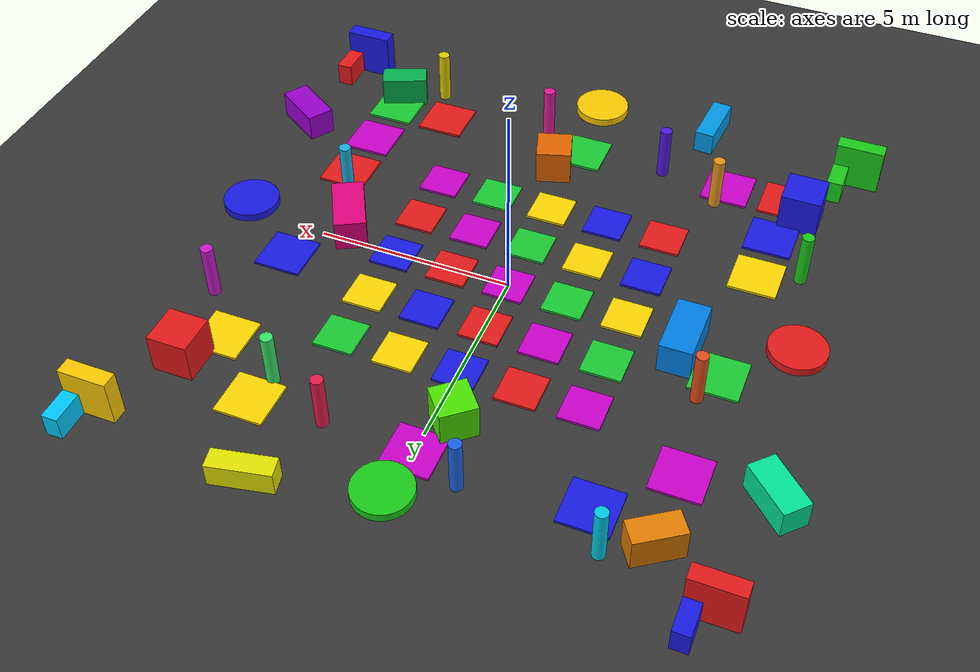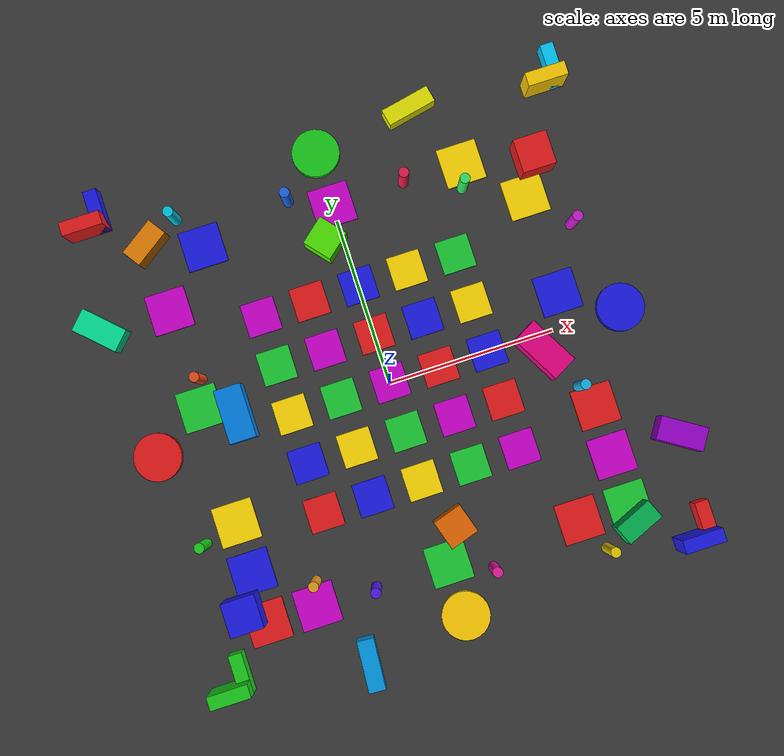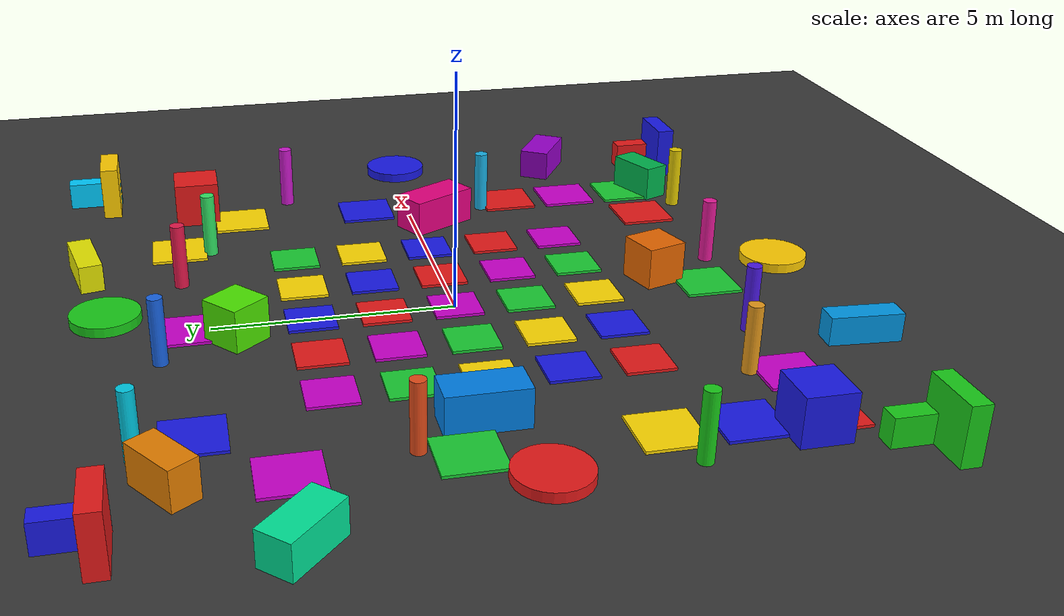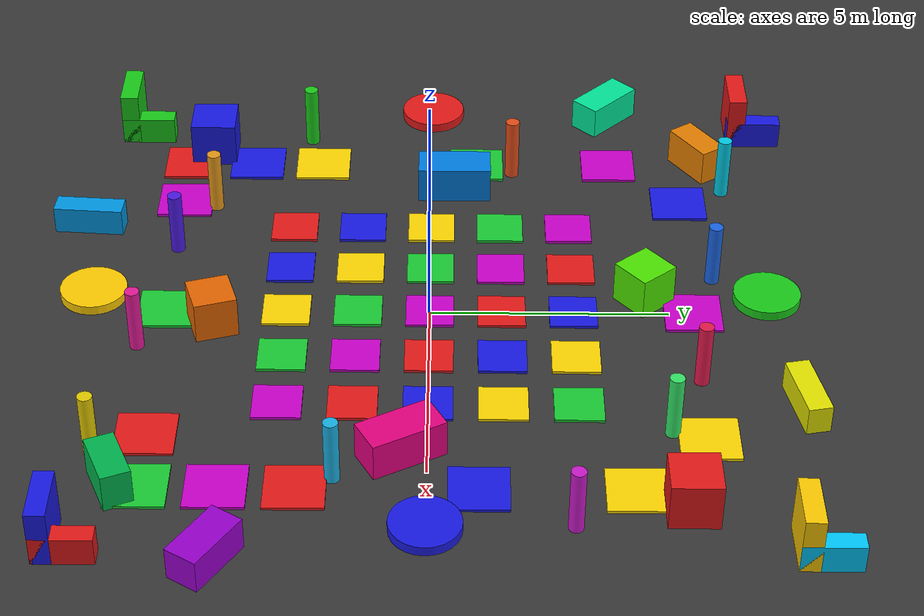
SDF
<?xml version="1.0" ?>
<sdf version="1.9">
  <world name="slam_world">

    <!-- Temel sistem plugin'leri -->
    <plugin filename="gz-sim-physics-system"
            name="gz::sim::systems::Physics"/>
    <plugin filename="gz-sim-user-commands-system"
            name="gz::sim::systems::UserCommands"/>
    <plugin filename="gz-sim-scene-broadcaster-system"
            name="gz::sim::systems::SceneBroadcaster"/>
    <plugin filename="gz-sim-sensors-system"
            name="gz::sim::systems::Sensors">
      <render_engine>ogre2</render_engine>
    </plugin>

    <gravity>0 0 -9.8</gravity>

    <scene>
      <ambient>1.0 1.0 1.0 1</ambient>
      <background>0.4 0.6 0.8 1</background>
      <shadows>false</shadows>
    </scene>

    <!-- Ana güneş ışığı -->
    <light name="sun" type="directional">
      <pose>0 0 30 0 0 0</pose>
      <diffuse>1.0 1.0 1.0 1</diffuse>
      <specular>0.4 0.4 0.4 1</specular>
      <direction>-0.2 0.1 -1</direction>
      <cast_shadows>false</cast_shadows>
    </light>

    <!-- Dolgu ışığı: gölge bırakmaz, renkleri eşit aydınlatır -->
    <light name="fill_light" type="directional">
      <pose>0 0 20 0 0 0</pose>
      <diffuse>0.6 0.6 0.6 1</diffuse>
      <specular>0.1 0.1 0.1 1</specular>
      <direction>0.3 -0.2 -1</direction>
      <cast_shadows>false</cast_shadows>
    </light>

    <!-- ===== ZEMIN: koyu gri — açık renkli tile'lar daha belirgin görünür ===== -->
    <model name="ground_plane">
      <static>true</static>
      <pose>0 0 0 0 0 0</pose>
      <link name="ground_link">
        <collision name="collision">
          <geometry>
            <plane><normal>0 0 1</normal><size>80 80</size></plane>
          </geometry>
        </collision>
        <visual name="visual">
          <geometry>
            <plane><normal>0 0 1</normal><size>80 80</size></plane>
          </geometry>
          <material>
            <ambient>0.18 0.18 0.18 1</ambient>
            <diffuse>0.22 0.22 0.22 1</diffuse>
            <specular>0.02 0.02 0.02 1</specular>
          </material>
        </visual>
      </link>
    </model>

    <model name="tile_0">
      <static>true</static>
      <pose>-3.0 -3.0 0.03 0 0 0.0</pose>
      <link name="link">
        <collision name="col"><geometry><box><size>1.0 1.0 0.06</size></box></geometry></collision>
        <visual name="vis">
          <geometry><box><size>1.0 1.0 0.06</size></box></geometry>
          <material><ambient>0.9 0.1 0.1 1</ambient><diffuse>0.9 0.1 0.1 1</diffuse></material>
        </visual>
      </link>
    </model>

    <model name="tile_1">
      <static>true</static>
      <pose>-3.0 -1.5 0.03 0 0 0.0</pose>
      <link name="link">
        <collision name="col"><geometry><box><size>1.0 1.0 0.06</size></box></geometry></collision>
        <visual name="vis">
          <geometry><box><size>1.0 1.0 0.06</size></box></geometry>
          <material><ambient>0.1 0.1 0.9 1</ambient><diffuse>0.1 0.1 0.9 1</diffuse></material>
        </visual>
      </link>
    </model>

    <model name="tile_2">
      <static>true</static>
      <pose>-3.0 0.0 0.03 0 0 0.0</pose>
      <link name="link">
        <collision name="col"><geometry><box><size>1.0 1.0 0.06</size></box></geometry></collision>
        <visual name="vis">
          <geometry><box><size>1.0 1.0 0.06</size></box></geometry>
          <material><ambient>1.0 0.85 0.0 1</ambient><diffuse>1.0 0.85 0.0 1</diffuse></material>
        </visual>
      </link>
    </model>

    <model name="tile_3">
      <static>true</static>
      <pose>-3.0 1.5 0.03 0 0 0.0</pose>
      <link name="link">
        <collision name="col"><geometry><box><size>1.0 1.0 0.06</size></box></geometry></collision>
        <visual name="vis">
          <geometry><box><size>1.0 1.0 0.06</size></box></geometry>
          <material><ambient>0.1 0.8 0.2 1</ambient><diffuse>0.1 0.8 0.2 1</diffuse></material>
        </visual>
      </link>
    </model>

    <model name="tile_4">
      <static>true</static>
      <pose>-3.0 3.0 0.03 0 0 0.0</pose>
      <link name="link">
        <collision name="col"><geometry><box><size>1.0 1.0 0.06</size></box></geometry></collision>
        <visual name="vis">
          <geometry><box><size>1.0 1.0 0.06</size></box></geometry>
          <material><ambient>0.8 0.0 0.8 1</ambient><diffuse>0.8 0.0 0.8 1</diffuse></material>
        </visual>
      </link>
    </model>

    <model name="tile_5">
      <static>true</static>
      <pose>-1.5 -3.0 0.03 0 0 0.0</pose>
      <link name="link">
        <collision name="col"><geometry><box><size>1.0 1.0 0.06</size></box></geometry></collision>
        <visual name="vis">
          <geometry><box><size>1.0 1.0 0.06</size></box></geometry>
          <material><ambient>0.1 0.1 0.9 1</ambient><diffuse>0.1 0.1 0.9 1</diffuse></material>
        </visual>
      </link>
    </model>

    <model name="tile_6">
      <static>true</static>
      <pose>-1.5 -1.5 0.03 0 0 0.0</pose>
      <link name="link">
        <collision name="col"><geometry><box><size>1.0 1.0 0.06</size></box></geometry></collision>
        <visual name="vis">
          <geometry><box><size>1.0 1.0 0.06</size></box></geometry>
          <material><ambient>1.0 0.85 0.0 1</ambient><diffuse>1.0 0.85 0.0 1</diffuse></material>
        </visual>
      </link>
    </model>

    <model name="tile_7">
      <static>true</static>
      <pose>-1.5 0.0 0.03 0 0 0.0</pose>
      <link name="link">
        <collision name="col"><geometry><box><size>1.0 1.0 0.06</size></box></geometry></collision>
        <visual name="vis">
          <geometry><box><size>1.0 1.0 0.06</size></box></geometry>
          <material><ambient>0.1 0.8 0.2 1</ambient><diffuse>0.1 0.8 0.2 1</diffuse></material>
        </visual>
      </link>
    </model>

    <model name="tile_8">
      <static>true</static>
      <pose>-1.5 1.5 0.03 0 0 0.0</pose>
      <link name="link">
        <collision name="col"><geometry><box><size>1.0 1.0 0.06</size></box></geometry></collision>
        <visual name="vis">
          <geometry><box><size>1.0 1.0 0.06</size></box></geometry>
          <material><ambient>0.8 0.0 0.8 1</ambient><diffuse>0.8 0.0 0.8 1</diffuse></material>
        </visual>
      </link>
    </model>

    <model name="tile_9">
      <static>true</static>
      <pose>-1.5 3.0 0.03 0 0 0.0</pose>
      <link name="link">
        <collision name="col"><geometry><box><size>1.0 1.0 0.06</size></box></geometry></collision>
        <visual name="vis">
          <geometry><box><size>1.0 1.0 0.06</size></box></geometry>
          <material><ambient>0.9 0.1 0.1 1</ambient><diffuse>0.9 0.1 0.1 1</diffuse></material>
        </visual>
      </link>
    </model>

    <model name="tile_10">
      <static>true</static>
      <pose>0.0 -3.0 0.03 0 0 0.0</pose>
      <link name="link">
        <collision name="col"><geometry><box><size>1.0 1.0 0.06</size></box></geometry></collision>
        <visual name="vis">
          <geometry><box><size>1.0 1.0 0.06</size></box></geometry>
          <material><ambient>1.0 0.85 0.0 1</ambient><diffuse>1.0 0.85 0.0 1</diffuse></material>
        </visual>
      </link>
    </model>

    <model name="tile_11">
      <static>true</static>
      <pose>0.0 -1.5 0.03 0 0 0.0</pose>
      <link name="link">
        <collision name="col"><geometry><box><size>1.0 1.0 0.06</size></box></geometry></collision>
        <visual name="vis">
          <geometry><box><size>1.0 1.0 0.06</size></box></geometry>
          <material><ambient>0.1 0.8 0.2 1</ambient><diffuse>0.1 0.8 0.2 1</diffuse></material>
        </visual>
      </link>
    </model>

    <model name="tile_12">
      <static>true</static>
      <pose>0.0 0.0 0.03 0 0 0.0</pose>
      <link name="link">
        <collision name="col"><geometry><box><size>1.0 1.0 0.06</size></box></geometry></collision>
        <visual name="vis">
          <geometry><box><size>1.0 1.0 0.06</size></box></geometry>
          <material><ambient>0.8 0.0 0.8 1</ambient><diffuse>0.8 0.0 0.8 1</diffuse></material>
        </visual>
      </link>
    </model>

    <model name="tile_13">
      <static>true</static>
      <pose>0.0 1.5 0.03 0 0 0.0</pose>
      <link name="link">
        <collision name="col"><geometry><box><size>1.0 1.0 0.06</size></box></geometry></collision>
        <visual name="vis">
          <geometry><box><size>1.0 1.0 0.06</size></box></geometry>
          <material><ambient>0.9 0.1 0.1 1</ambient><diffuse>0.9 0.1 0.1 1</diffuse></material>
        </visual>
      </link>
    </model>

    <model name="tile_14">
      <static>true</static>
      <pose>0.0 3.0 0.03 0 0 0.0</pose>
      <link name="link">
        <collision name="col"><geometry><box><size>1.0 1.0 0.06</size></box></geometry></collision>
        <visual name="vis">
          <geometry><box><size>1.0 1.0 0.06</size></box></geometry>
          <material><ambient>0.1 0.1 0.9 1</ambient><diffuse>0.1 0.1 0.9 1</diffuse></material>
        </visual>
      </link>
    </model>

    <model name="tile_15">
      <static>true</static>
      <pose>1.5 -3.0 0.03 0 0 0.0</pose>
      <link name="link">
        <collision name="col"><geometry><box><size>1.0 1.0 0.06</size></box></geometry></collision>
        <visual name="vis">
          <geometry><box><size>1.0 1.0 0.06</size></box></geometry>
          <material><ambient>0.1 0.8 0.2 1</ambient><diffuse>0.1 0.8 0.2 1</diffuse></material>
        </visual>
      </link>
    </model>

    <model name="tile_16">
      <static>true</static>
      <pose>1.5 -1.5 0.03 0 0 0.0</pose>
      <link name="link">
        <collision name="col"><geometry><box><size>1.0 1.0 0.06</size></box></geometry></collision>
        <visual name="vis">
          <geometry><box><size>1.0 1.0 0.06</size></box></geometry>
          <material><ambient>0.8 0.0 0.8 1</ambient><diffuse>0.8 0.0 0.8 1</diffuse></material>
        </visual>
      </link>
    </model>

    <model name="tile_17">
      <static>true</static>
      <pose>1.5 0.0 0.03 0 0 0.0</pose>
      <link name="link">
        <collision name="col"><geometry><box><size>1.0 1.0 0.06</size></box></geometry></collision>
        <visual name="vis">
          <geometry><box><size>1.0 1.0 0.06</size></box></geometry>
          <material><ambient>0.9 0.1 0.1 1</ambient><diffuse>0.9 0.1 0.1 1</diffuse></material>
        </visual>
      </link>
    </model>

    <model name="tile_18">
      <static>true</static>
      <pose>1.5 1.5 0.03 0 0 0.0</pose>
      <link name="link">
        <collision name="col"><geometry><box><size>1.0 1.0 0.06</size></box></geometry></collision>
        <visual name="vis">
          <geometry><box><size>1.0 1.0 0.06</size></box></geometry>
          <material><ambient>0.1 0.1 0.9 1</ambient><diffuse>0.1 0.1 0.9 1</diffuse></material>
        </visual>
      </link>
    </model>

    <model name="tile_19">
      <static>true</static>
      <pose>1.5 3.0 0.03 0 0 0.0</pose>
      <link name="link">
        <collision name="col"><geometry><box><size>1.0 1.0 0.06</size></box></geometry></collision>
        <visual name="vis">
          <geometry><box><size>1.0 1.0 0.06</size></box></geometry>
          <material><ambient>1.0 0.85 0.0 1</ambient><diffuse>1.0 0.85 0.0 1</diffuse></material>
        </visual>
      </link>
    </model>

    <model name="tile_20">
      <static>true</static>
      <pose>3.0 -3.0 0.03 0 0 0.0</pose>
      <link name="link">
        <collision name="col"><geometry><box><size>1.0 1.0 0.06</size></box></geometry></collision>
        <visual name="vis">
          <geometry><box><size>1.0 1.0 0.06</size></box></geometry>
          <material><ambient>0.8 0.0 0.8 1</ambient><diffuse>0.8 0.0 0.8 1</diffuse></material>
        </visual>
      </link>
    </model>

    <model name="tile_21">
      <static>true</static>
      <pose>3.0 -1.5 0.03 0 0 0.0</pose>
      <link name="link">
        <collision name="col"><geometry><box><size>1.0 1.0 0.06</size></box></geometry></collision>
        <visual name="vis">
          <geometry><box><size>1.0 1.0 0.06</size></box></geometry>
          <material><ambient>0.9 0.1 0.1 1</ambient><diffuse>0.9 0.1 0.1 1</diffuse></material>
        </visual>
      </link>
    </model>

    <model name="tile_22">
      <static>true</static>
      <pose>3.0 0.0 0.03 0 0 0.0</pose>
      <link name="link">
        <collision name="col"><geometry><box><size>1.0 1.0 0.06</size></box></geometry></collision>
        <visual name="vis">
          <geometry><box><size>1.0 1.0 0.06</size></box></geometry>
          <material><ambient>0.1 0.1 0.9 1</ambient><diffuse>0.1 0.1 0.9 1</diffuse></material>
        </visual>
      </link>
    </model>

    <model name="tile_23">
      <static>true</static>
      <pose>3.0 1.5 0.03 0 0 0.0</pose>
      <link name="link">
        <collision name="col"><geometry><box><size>1.0 1.0 0.06</size></box></geometry></collision>
        <visual name="vis">
          <geometry><box><size>1.0 1.0 0.06</size></box></geometry>
          <material><ambient>1.0 0.85 0.0 1</ambient><diffuse>1.0 0.85 0.0 1</diffuse></material>
        </visual>
      </link>
    </model>

    <model name="tile_24">
      <static>true</static>
      <pose>3.0 3.0 0.03 0 0 0.0</pose>
      <link name="link">
        <collision name="col"><geometry><box><size>1.0 1.0 0.06</size></box></geometry></collision>
        <visual name="vis">
          <geometry><box><size>1.0 1.0 0.06</size></box></geometry>
          <material><ambient>0.1 0.8 0.2 1</ambient><diffuse>0.1 0.8 0.2 1</diffuse></material>
        </visual>
      </link>
    </model>

    <model name="outer_tile_0">
      <static>true</static>
      <pose>-5.5 -5.5 0.03 0 0 0.0</pose>
      <link name="link">
        <collision name="col"><geometry><box><size>1.2 1.2 0.06</size></box></geometry></collision>
        <visual name="vis">
          <geometry><box><size>1.2 1.2 0.06</size></box></geometry>
          <material><ambient>0.9 0.1 0.1 1</ambient><diffuse>0.9 0.1 0.1 1</diffuse></material>
        </visual>
      </link>
    </model>

    <model name="outer_tile_1">
      <static>true</static>
      <pose>-5.5 -4.0 0.03 0 0 0.0</pose>
      <link name="link">
        <collision name="col"><geometry><box><size>1.2 1.2 0.06</size></box></geometry></collision>
        <visual name="vis">
          <geometry><box><size>1.2 1.2 0.06</size></box></geometry>
          <material><ambient>0.1 0.1 0.9 1</ambient><diffuse>0.1 0.1 0.9 1</diffuse></material>
        </visual>
      </link>
    </model>

    <model name="outer_tile_2">
      <static>true</static>
      <pose>-5.5 -2.5 0.03 0 0 0.0</pose>
      <link name="link">
        <collision name="col"><geometry><box><size>1.2 1.2 0.06</size></box></geometry></collision>
        <visual name="vis">
          <geometry><box><size>1.2 1.2 0.06</size></box></geometry>
          <material><ambient>1.0 0.85 0.0 1</ambient><diffuse>1.0 0.85 0.0 1</diffuse></material>
        </visual>
      </link>
    </model>

    <model name="outer_tile_3">
      <static>true</static>
      <pose>-5.5 1.0 0.03 0 0 0.0</pose>
      <link name="link">
        <collision name="col"><geometry><box><size>1.2 1.2 0.06</size></box></geometry></collision>
        <visual name="vis">
          <geometry><box><size>1.2 1.2 0.06</size></box></geometry>
          <material><ambient>0.1 0.8 0.2 1</ambient><diffuse>0.1 0.8 0.2 1</diffuse></material>
        </visual>
      </link>
    </model>

    <model name="outer_tile_4">
      <static>true</static>
      <pose>-5.5 4.0 0.03 0 0 0.0</pose>
      <link name="link">
        <collision name="col"><geometry><box><size>1.2 1.2 0.06</size></box></geometry></collision>
        <visual name="vis">
          <geometry><box><size>1.2 1.2 0.06</size></box></geometry>
          <material><ambient>0.8 0.0 0.8 1</ambient><diffuse>0.8 0.0 0.8 1</diffuse></material>
        </visual>
      </link>
    </model>

    <model name="outer_tile_5">
      <static>true</static>
      <pose>5.5 -5.5 0.03 0 0 0.0</pose>
      <link name="link">
        <collision name="col"><geometry><box><size>1.2 1.2 0.06</size></box></geometry></collision>
        <visual name="vis">
          <geometry><box><size>1.2 1.2 0.06</size></box></geometry>
          <material><ambient>0.1 0.8 0.2 1</ambient><diffuse>0.1 0.8 0.2 1</diffuse></material>
        </visual>
      </link>
    </model>

    <model name="outer_tile_6">
      <static>true</static>
      <pose>5.5 -4.0 0.03 0 0 0.0</pose>
      <link name="link">
        <collision name="col"><geometry><box><size>1.2 1.2 0.06</size></box></geometry></collision>
        <visual name="vis">
          <geometry><box><size>1.2 1.2 0.06</size></box></geometry>
          <material><ambient>0.8 0.0 0.8 1</ambient><diffuse>0.8 0.0 0.8 1</diffuse></material>
        </visual>
      </link>
    </model>

    <model name="outer_tile_7">
      <static>true</static>
      <pose>5.5 -2.5 0.03 0 0 0.0</pose>
      <link name="link">
        <collision name="col"><geometry><box><size>1.2 1.2 0.06</size></box></geometry></collision>
        <visual name="vis">
          <geometry><box><size>1.2 1.2 0.06</size></box></geometry>
          <material><ambient>0.9 0.1 0.1 1</ambient><diffuse>0.9 0.1 0.1 1</diffuse></material>
        </visual>
      </link>
    </model>

    <model name="outer_tile_8">
      <static>true</static>
      <pose>5.5 1.0 0.03 0 0 0.0</pose>
      <link name="link">
        <collision name="col"><geometry><box><size>1.2 1.2 0.06</size></box></geometry></collision>
        <visual name="vis">
          <geometry><box><size>1.2 1.2 0.06</size></box></geometry>
          <material><ambient>0.1 0.1 0.9 1</ambient><diffuse>0.1 0.1 0.9 1</diffuse></material>
        </visual>
      </link>
    </model>

    <model name="outer_tile_9">
      <static>true</static>
      <pose>5.5 4.0 0.03 0 0 0.0</pose>
      <link name="link">
        <collision name="col"><geometry><box><size>1.2 1.2 0.06</size></box></geometry></collision>
        <visual name="vis">
          <geometry><box><size>1.2 1.2 0.06</size></box></geometry>
          <material><ambient>1.0 0.85 0.0 1</ambient><diffuse>1.0 0.85 0.0 1</diffuse></material>
        </visual>
      </link>
    </model>

    <model name="outer_tile_10">
      <static>true</static>
      <pose>-4.0 -5.5 0.03 0 0 0.0</pose>
      <link name="link">
        <collision name="col"><geometry><box><size>1.2 1.2 0.06</size></box></geometry></collision>
        <visual name="vis">
          <geometry><box><size>1.2 1.2 0.06</size></box></geometry>
          <material><ambient>0.8 0.0 0.8 1</ambient><diffuse>0.8 0.0 0.8 1</diffuse></material>
        </visual>
      </link>
    </model>

    <model name="outer_tile_11">
      <static>true</static>
      <pose>4.0 -5.5 0.03 0 0 0.0</pose>
      <link name="link">
        <collision name="col"><geometry><box><size>1.2 1.2 0.06</size></box></geometry></collision>
        <visual name="vis">
          <geometry><box><size>1.2 1.2 0.06</size></box></geometry>
          <material><ambient>0.9 0.1 0.1 1</ambient><diffuse>0.9 0.1 0.1 1</diffuse></material>
        </visual>
      </link>
    </model>

    <model name="outer_tile_12">
      <static>true</static>
      <pose>-4.0 5.5 0.03 0 0 0.0</pose>
      <link name="link">
        <collision name="col"><geometry><box><size>1.2 1.2 0.06</size></box></geometry></collision>
        <visual name="vis">
          <geometry><box><size>1.2 1.2 0.06</size></box></geometry>
          <material><ambient>0.1 0.1 0.9 1</ambient><diffuse>0.1 0.1 0.9 1</diffuse></material>
        </visual>
      </link>
    </model>

    <model name="outer_tile_13">
      <static>true</static>
      <pose>4.0 5.5 0.03 0 0 0.0</pose>
      <link name="link">
        <collision name="col"><geometry><box><size>1.2 1.2 0.06</size></box></geometry></collision>
        <visual name="vis">
          <geometry><box><size>1.2 1.2 0.06</size></box></geometry>
          <material><ambient>1.0 0.85 0.0 1</ambient><diffuse>1.0 0.85 0.0 1</diffuse></material>
        </visual>
      </link>
    </model>

    <model name="outer_tile_14">
      <static>true</static>
      <pose>0.0 -5.5 0.03 0 0 0.0</pose>
      <link name="link">
        <collision name="col"><geometry><box><size>1.2 1.2 0.06</size></box></geometry></collision>
        <visual name="vis">
          <geometry><box><size>1.2 1.2 0.06</size></box></geometry>
          <material><ambient>0.1 0.8 0.2 1</ambient><diffuse>0.1 0.8 0.2 1</diffuse></material>
        </visual>
      </link>
    </model>

    <model name="outer_tile_15">
      <static>true</static>
      <pose>0.0 5.5 0.03 0 0 0.0</pose>
      <link name="link">
        <collision name="col"><geometry><box><size>1.2 1.2 0.06</size></box></geometry></collision>
        <visual name="vis">
          <geometry><box><size>1.2 1.2 0.06</size></box></geometry>
          <material><ambient>0.8 0.0 0.8 1</ambient><diffuse>0.8 0.0 0.8 1</diffuse></material>
        </visual>
      </link>
    </model>

    <model name="pillar_0">
      <static>true</static>
      <pose>-5.2 1.8 0.7 0 0 0</pose>
      <link name="link">
        <collision name="col"><geometry><cylinder><radius>0.15</radius><length>1.4</length></cylinder></geometry></collision>
        <visual name="vis">
          <geometry><cylinder><radius>0.15</radius><length>1.4</length></cylinder></geometry>
          <material><ambient>0.9 0.3 0.1 1</ambient><diffuse>0.9 0.3 0.1 1</diffuse></material>
        </visual>
      </link>
    </model>

    <model name="pillar_1">
      <static>true</static>
      <pose>5.2 -1.8 0.7 0 0 0</pose>
      <link name="link">
        <collision name="col"><geometry><cylinder><radius>0.15</radius><length>1.4</length></cylinder></geometry></collision>
        <visual name="vis">
          <geometry><cylinder><radius>0.15</radius><length>1.4</length></cylinder></geometry>
          <material><ambient>0.1 0.7 0.9 1</ambient><diffuse>0.1 0.7 0.9 1</diffuse></material>
        </visual>
      </link>
    </model>

    <model name="pillar_2">
      <static>true</static>
      <pose>-3.8 -4.8 0.7 0 0 0</pose>
      <link name="link">
        <collision name="col"><geometry><cylinder><radius>0.15</radius><length>1.4</length></cylinder></geometry></collision>
        <visual name="vis">
          <geometry><cylinder><radius>0.15</radius><length>1.4</length></cylinder></geometry>
          <material><ambient>0.9 0.6 0.1 1</ambient><diffuse>0.9 0.6 0.1 1</diffuse></material>
        </visual>
      </link>
    </model>

    <model name="pillar_3">
      <static>true</static>
      <pose>3.8 4.8 0.7 0 0 0</pose>
      <link name="link">
        <collision name="col"><geometry><cylinder><radius>0.15</radius><length>1.4</length></cylinder></geometry></collision>
        <visual name="vis">
          <geometry><cylinder><radius>0.15</radius><length>1.4</length></cylinder></geometry>
          <material><ambient>0.2 0.9 0.4 1</ambient><diffuse>0.2 0.9 0.4 1</diffuse></material>
        </visual>
      </link>
    </model>

    <model name="pillar_4">
      <static>true</static>
      <pose>1.2 -6.0 0.7 0 0 0</pose>
      <link name="link">
        <collision name="col"><geometry><cylinder><radius>0.15</radius><length>1.4</length></cylinder></geometry></collision>
        <visual name="vis">
          <geometry><cylinder><radius>0.15</radius><length>1.4</length></cylinder></geometry>
          <material><ambient>0.9 0.1 0.6 1</ambient><diffuse>0.9 0.1 0.6 1</diffuse></material>
        </visual>
      </link>
    </model>

    <model name="pillar_5">
      <static>true</static>
      <pose>-1.2 6.0 0.7 0 0 0</pose>
      <link name="link">
        <collision name="col"><geometry><cylinder><radius>0.15</radius><length>1.4</length></cylinder></geometry></collision>
        <visual name="vis">
          <geometry><cylinder><radius>0.15</radius><length>1.4</length></cylinder></geometry>
          <material><ambient>0.1 0.4 0.9 1</ambient><diffuse>0.1 0.4 0.9 1</diffuse></material>
        </visual>
      </link>
    </model>

    <model name="pillar_6">
      <static>true</static>
      <pose>6.5 2.8 0.7 0 0 0</pose>
      <link name="link">
        <collision name="col"><geometry><cylinder><radius>0.15</radius><length>1.4</length></cylinder></geometry></collision>
        <visual name="vis">
          <geometry><cylinder><radius>0.15</radius><length>1.4</length></cylinder></geometry>
          <material><ambient>0.8 0.1 0.8 1</ambient><diffuse>0.8 0.1 0.8 1</diffuse></material>
        </visual>
      </link>
    </model>

    <model name="pillar_7">
      <static>true</static>
      <pose>-6.5 -2.8 0.7 0 0 0</pose>
      <link name="link">
        <collision name="col"><geometry><cylinder><radius>0.15</radius><length>1.4</length></cylinder></geometry></collision>
        <visual name="vis">
          <geometry><cylinder><radius>0.15</radius><length>1.4</length></cylinder></geometry>
          <material><ambient>0.1 0.8 0.1 1</ambient><diffuse>0.1 0.8 0.1 1</diffuse></material>
        </visual>
      </link>
    </model>

    <model name="pillar_8">
      <static>true</static>
      <pose>4.5 -6.5 0.7 0 0 0</pose>
      <link name="link">
        <collision name="col"><geometry><cylinder><radius>0.15</radius><length>1.4</length></cylinder></geometry></collision>
        <visual name="vis">
          <geometry><cylinder><radius>0.15</radius><length>1.4</length></cylinder></geometry>
          <material><ambient>0.9 0.8 0.0 1</ambient><diffuse>0.9 0.8 0.0 1</diffuse></material>
        </visual>
      </link>
    </model>

    <model name="pillar_9">
      <static>true</static>
      <pose>-4.5 6.5 0.7 0 0 0</pose>
      <link name="link">
        <collision name="col"><geometry><cylinder><radius>0.15</radius><length>1.4</length></cylinder></geometry></collision>
        <visual name="vis">
          <geometry><cylinder><radius>0.15</radius><length>1.4</length></cylinder></geometry>
          <material><ambient>0.0 0.8 0.9 1</ambient><diffuse>0.0 0.8 0.9 1</diffuse></material>
        </visual>
      </link>
    </model>

    <model name="pillar_10">
      <static>true</static>
      <pose>2.2 5.5 0.7 0 0 0</pose>
      <link name="link">
        <collision name="col"><geometry><cylinder><radius>0.15</radius><length>1.4</length></cylinder></geometry></collision>
        <visual name="vis">
          <geometry><cylinder><radius>0.15</radius><length>1.4</length></cylinder></geometry>
          <material><ambient>0.9 0.1 0.3 1</ambient><diffuse>0.9 0.1 0.3 1</diffuse></material>
        </visual>
      </link>
    </model>

    <model name="pillar_11">
      <static>true</static>
      <pose>-2.2 -5.5 0.7 0 0 0</pose>
      <link name="link">
        <collision name="col"><geometry><cylinder><radius>0.15</radius><length>1.4</length></cylinder></geometry></collision>
        <visual name="vis">
          <geometry><cylinder><radius>0.15</radius><length>1.4</length></cylinder></geometry>
          <material><ambient>0.3 0.1 0.9 1</ambient><diffuse>0.3 0.1 0.9 1</diffuse></material>
        </visual>
      </link>
    </model>

    <model name="fat_cyl_0">
      <static>true</static>
      <pose>-7.0 0.0 0.5 0 0 0</pose>
      <link name="link">
        <collision name="col"><geometry><cylinder><radius>0.7</radius><length>0.2</length></cylinder></geometry></collision>
        <visual name="vis">
          <geometry><cylinder><radius>0.7</radius><length>0.2</length></cylinder></geometry>
          <material><ambient>0.9 0.1 0.1 1</ambient><diffuse>0.9 0.1 0.1 1</diffuse></material>
        </visual>
      </link>
    </model>

    <model name="fat_cyl_1">
      <static>true</static>
      <pose>7.0 0.0 0.5 0 0 0</pose>
      <link name="link">
        <collision name="col"><geometry><cylinder><radius>0.7</radius><length>0.2</length></cylinder></geometry></collision>
        <visual name="vis">
          <geometry><cylinder><radius>0.7</radius><length>0.2</length></cylinder></geometry>
          <material><ambient>0.1 0.1 0.9 1</ambient><diffuse>0.1 0.1 0.9 1</diffuse></material>
        </visual>
      </link>
    </model>

    <model name="fat_cyl_2">
      <static>true</static>
      <pose>0.0 -7.0 0.5 0 0 0</pose>
      <link name="link">
        <collision name="col"><geometry><cylinder><radius>0.7</radius><length>0.2</length></cylinder></geometry></collision>
        <visual name="vis">
          <geometry><cylinder><radius>0.7</radius><length>0.2</length></cylinder></geometry>
          <material><ambient>1.0 0.8 0.0 1</ambient><diffuse>1.0 0.8 0.0 1</diffuse></material>
        </visual>
      </link>
    </model>

    <model name="fat_cyl_3">
      <static>true</static>
      <pose>0.0 7.0 0.5 0 0 0</pose>
      <link name="link">
        <collision name="col"><geometry><cylinder><radius>0.7</radius><length>0.2</length></cylinder></geometry></collision>
        <visual name="vis">
          <geometry><cylinder><radius>0.7</radius><length>0.2</length></cylinder></geometry>
          <material><ambient>0.1 0.8 0.1 1</ambient><diffuse>0.1 0.8 0.1 1</diffuse></material>
        </visual>
      </link>
    </model>

    <model name="mbox_0">
      <static>true</static>
      <pose>6.0 5.0 0.5 0 0 0.0</pose>
      <link name="link">
        <collision name="col"><geometry><box><size>1.0 1.0 1.0</size></box></geometry></collision>
        <visual name="vis">
          <geometry><box><size>1.0 1.0 1.0</size></box></geometry>
          <material><ambient>0.9 0.1 0.1 1</ambient><diffuse>0.9 0.1 0.1 1</diffuse></material>
        </visual>
      </link>
    </model>

    <model name="mbox_1">
      <static>true</static>
      <pose>-6.0 -5.0 0.5 0 0 0.0</pose>
      <link name="link">
        <collision name="col"><geometry><box><size>1.0 1.0 1.0</size></box></geometry></collision>
        <visual name="vis">
          <geometry><box><size>1.0 1.0 1.0</size></box></geometry>
          <material><ambient>0.1 0.1 0.9 1</ambient><diffuse>0.1 0.1 0.9 1</diffuse></material>
        </visual>
      </link>
    </model>

    <model name="mbox_2">
      <static>true</static>
      <pose>5.5 -6.0 0.4 0 0 0.4</pose>
      <link name="link">
        <collision name="col"><geometry><box><size>1.2 0.6 0.8</size></box></geometry></collision>
        <visual name="vis">
          <geometry><box><size>1.2 0.6 0.8</size></box></geometry>
          <material><ambient>0.0 0.7 0.3 1</ambient><diffuse>0.0 0.7 0.3 1</diffuse></material>
        </visual>
      </link>
    </model>

    <model name="mbox_3">
      <static>true</static>
      <pose>-5.5 6.0 0.4 0 0 0.6</pose>
      <link name="link">
        <collision name="col"><geometry><box><size>1.2 0.6 0.8</size></box></geometry></collision>
        <visual name="vis">
          <geometry><box><size>1.2 0.6 0.8</size></box></geometry>
          <material><ambient>0.9 0.5 0.0 1</ambient><diffuse>0.9 0.5 0.0 1</diffuse></material>
        </visual>
      </link>
    </model>

    <model name="mbox_4">
      <static>true</static>
      <pose>7.5 -4.0 0.35 0 0 1.0</pose>
      <link name="link">
        <collision name="col"><geometry><box><size>0.7 1.4 0.7</size></box></geometry></collision>
        <visual name="vis">
          <geometry><box><size>0.7 1.4 0.7</size></box></geometry>
          <material><ambient>0.6 0.0 0.8 1</ambient><diffuse>0.6 0.0 0.8 1</diffuse></material>
        </visual>
      </link>
    </model>

    <model name="mbox_5">
      <static>true</static>
      <pose>-7.5 4.0 0.35 0 0 0.8</pose>
      <link name="link">
        <collision name="col"><geometry><box><size>0.7 1.4 0.7</size></box></geometry></collision>
        <visual name="vis">
          <geometry><box><size>0.7 1.4 0.7</size></box></geometry>
          <material><ambient>0.0 0.9 0.6 1</ambient><diffuse>0.0 0.9 0.6 1</diffuse></material>
        </visual>
      </link>
    </model>

    <model name="mbox_6">
      <static>true</static>
      <pose>3.0 7.5 0.3 0 0 0.2</pose>
      <link name="link">
        <collision name="col"><geometry><box><size>1.5 0.5 0.6</size></box></geometry></collision>
        <visual name="vis">
          <geometry><box><size>1.5 0.5 0.6</size></box></geometry>
          <material><ambient>0.9 0.9 0.0 1</ambient><diffuse>0.9 0.9 0.0 1</diffuse></material>
        </visual>
      </link>
    </model>

    <model name="mbox_7">
      <static>true</static>
      <pose>-3.0 -7.5 0.3 0 0 1.5</pose>
      <link name="link">
        <collision name="col"><geometry><box><size>1.5 0.5 0.6</size></box></geometry></collision>
        <visual name="vis">
          <geometry><box><size>1.5 0.5 0.6</size></box></geometry>
          <material><ambient>0.0 0.6 0.9 1</ambient><diffuse>0.0 0.6 0.9 1</diffuse></material>
        </visual>
      </link>
    </model>

    <model name="mbox_8">
      <static>true</static>
      <pose>0.5 -4.5 0.45 0 0 0.3</pose>
      <link name="link">
        <collision name="col"><geometry><box><size>0.9 0.9 0.9</size></box></geometry></collision>
        <visual name="vis">
          <geometry><box><size>0.9 0.9 0.9</size></box></geometry>
          <material><ambient>0.9 0.4 0.0 1</ambient><diffuse>0.9 0.4 0.0 1</diffuse></material>
        </visual>
      </link>
    </model>

    <model name="mbox_9">
      <static>true</static>
      <pose>-0.5 4.5 0.45 0 0 0.7</pose>
      <link name="link">
        <collision name="col"><geometry><box><size>0.9 0.9 0.9</size></box></geometry></collision>
        <visual name="vis">
          <geometry><box><size>0.9 0.9 0.9</size></box></geometry>
          <material><ambient>0.3 0.9 0.0 1</ambient><diffuse>0.3 0.9 0.0 1</diffuse></material>
        </visual>
      </link>
    </model>

    <model name="mbox_10">
      <static>true</static>
      <pose>-4.5 0.5 0.4 0 0 0.0</pose>
      <link name="link">
        <collision name="col"><geometry><box><size>0.8 1.6 0.8</size></box></geometry></collision>
        <visual name="vis">
          <geometry><box><size>0.8 1.6 0.8</size></box></geometry>
          <material><ambient>0.0 0.5 0.9 1</ambient><diffuse>0.0 0.5 0.9 1</diffuse></material>
        </visual>
      </link>
    </model>

    <model name="mbox_11">
      <static>true</static>
      <pose>4.5 -0.5 0.4 0 0 0.5</pose>
      <link name="link">
        <collision name="col"><geometry><box><size>0.8 1.6 0.8</size></box></geometry></collision>
        <visual name="vis">
          <geometry><box><size>0.8 1.6 0.8</size></box></geometry>
          <material><ambient>0.9 0.0 0.5 1</ambient><diffuse>0.9 0.0 0.5 1</diffuse></material>
        </visual>
      </link>
    </model>

    <model name="corner_a_0">
      <static>true</static>
      <pose>-7 7 0.6 0 0 0.0</pose>
      <link name="link">
        <collision name="col"><geometry><box><size>1.2 0.4 1.2</size></box></geometry></collision>
        <visual name="vis">
          <geometry><box><size>1.2 0.4 1.2</size></box></geometry>
          <material><ambient>0.9 0.1 0.1 1</ambient><diffuse>0.9 0.1 0.1 1</diffuse></material>
        </visual>
      </link>
    </model>

    <model name="corner_b_0">
      <static>true</static>
      <pose>-6.6 7.4 0.3 0 0 0.0</pose>
      <link name="link">
        <collision name="col"><geometry><box><size>0.4 1.2 0.6</size></box></geometry></collision>
        <visual name="vis">
          <geometry><box><size>0.4 1.2 0.6</size></box></geometry>
          <material><ambient>0.1 0.1 0.9 1</ambient><diffuse>0.1 0.1 0.9 1</diffuse></material>
        </visual>
      </link>
    </model>

    <model name="corner_a_1">
      <static>true</static>
      <pose>7 7 0.6 0 0 0.0</pose>
      <link name="link">
        <collision name="col"><geometry><box><size>1.2 0.4 1.2</size></box></geometry></collision>
        <visual name="vis">
          <geometry><box><size>1.2 0.4 1.2</size></box></geometry>
          <material><ambient>1.0 0.8 0.0 1</ambient><diffuse>1.0 0.8 0.0 1</diffuse></material>
        </visual>
      </link>
    </model>

    <model name="corner_b_1">
      <static>true</static>
      <pose>7.4 7.4 0.3 0 0 0.0</pose>
      <link name="link">
        <collision name="col"><geometry><box><size>0.4 1.2 0.6</size></box></geometry></collision>
        <visual name="vis">
          <geometry><box><size>0.4 1.2 0.6</size></box></geometry>
          <material><ambient>0.0 0.8 1.0 1</ambient><diffuse>0.0 0.8 1.0 1</diffuse></material>
        </visual>
      </link>
    </model>

    <model name="corner_a_2">
      <static>true</static>
      <pose>7 -7 0.6 0 0 0.0</pose>
      <link name="link">
        <collision name="col"><geometry><box><size>1.2 0.4 1.2</size></box></geometry></collision>
        <visual name="vis">
          <geometry><box><size>1.2 0.4 1.2</size></box></geometry>
          <material><ambient>0.1 0.1 0.9 1</ambient><diffuse>0.1 0.1 0.9 1</diffuse></material>
        </visual>
      </link>
    </model>

    <model name="corner_b_2">
      <static>true</static>
      <pose>7.4 -6.6 0.3 0 0 0.0</pose>
      <link name="link">
        <collision name="col"><geometry><box><size>0.4 1.2 0.6</size></box></geometry></collision>
        <visual name="vis">
          <geometry><box><size>0.4 1.2 0.6</size></box></geometry>
          <material><ambient>0.9 0.1 0.1 1</ambient><diffuse>0.9 0.1 0.1 1</diffuse></material>
        </visual>
      </link>
    </model>

    <model name="corner_a_3">
      <static>true</static>
      <pose>-7 -7 0.6 0 0 0.0</pose>
      <link name="link">
        <collision name="col"><geometry><box><size>1.2 0.4 1.2</size></box></geometry></collision>
        <visual name="vis">
          <geometry><box><size>1.2 0.4 1.2</size></box></geometry>
          <material><ambient>0.1 0.8 0.1 1</ambient><diffuse>0.1 0.8 0.1 1</diffuse></material>
        </visual>
      </link>
    </model>

    <model name="corner_b_3">
      <static>true</static>
      <pose>-6.6 -6.6 0.3 0 0 0.0</pose>
      <link name="link">
        <collision name="col"><geometry><box><size>0.4 1.2 0.6</size></box></geometry></collision>
        <visual name="vis">
          <geometry><box><size>0.4 1.2 0.6</size></box></geometry>
          <material><ambient>0.1 0.8 0.1 1</ambient><diffuse>0.1 0.8 0.1 1</diffuse></material>
        </visual>
      </link>
    </model>

    <!-- ===== KAMERA RIG: 4m yüksekte, aşağı bakan ===== -->
    <model name="down_cam_rig">
      <static>true</static>
      <pose>0 0 4 0 0 0</pose>

      <link name="cam_link">
        <pose>0 0 0 0 1.5708 0</pose>

        <sensor name="down_camera" type="camera">
          <always_on>true</always_on>
          <update_rate>15</update_rate>
          <visualize>false</visualize>
          <camera>
            <horizontal_fov>1.2217</horizontal_fov>
            <image>
              <width>640</width>
              <height>480</height>
              <format>R8G8B8</format>
            </image>
            <clip>
              <near>0.05</near>
              <far>50</far>
            </clip>
          </camera>
          <topic>/down_camera</topic>
        </sensor>
      </link>
    </model>

  </world>
</sdf>
